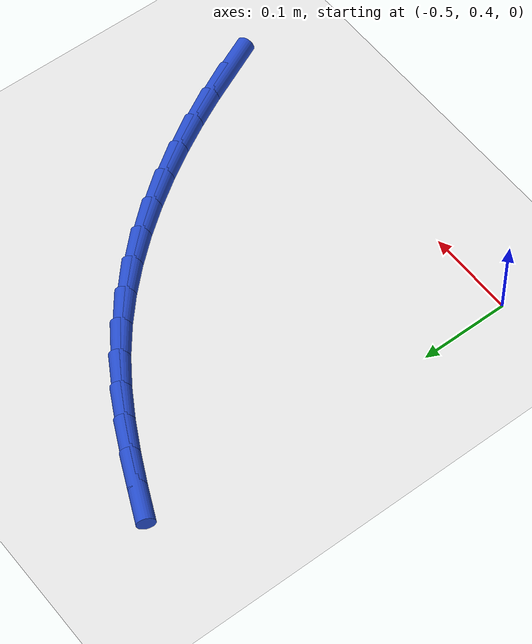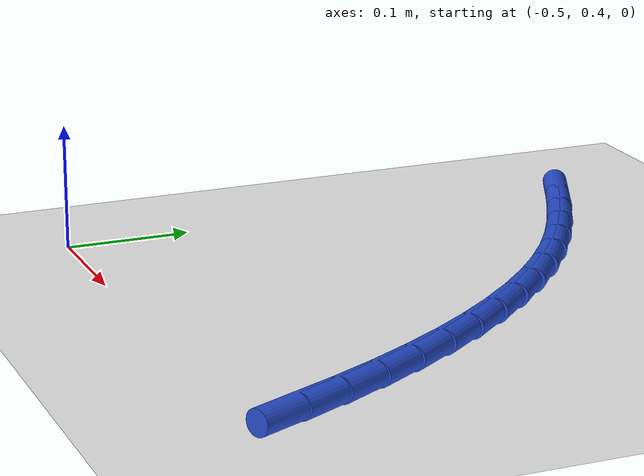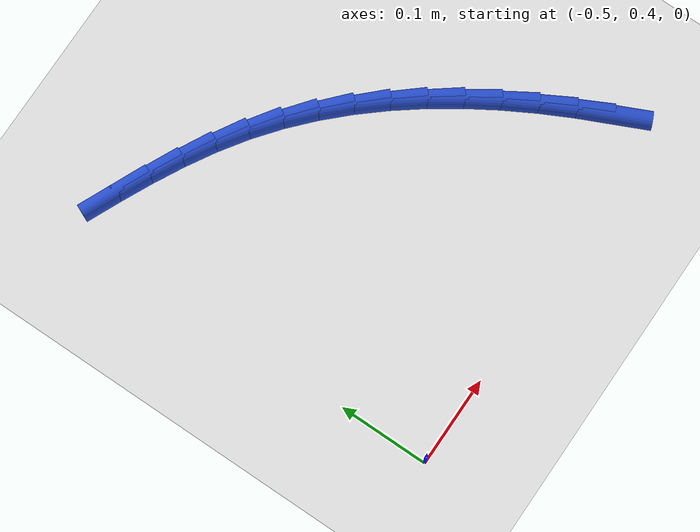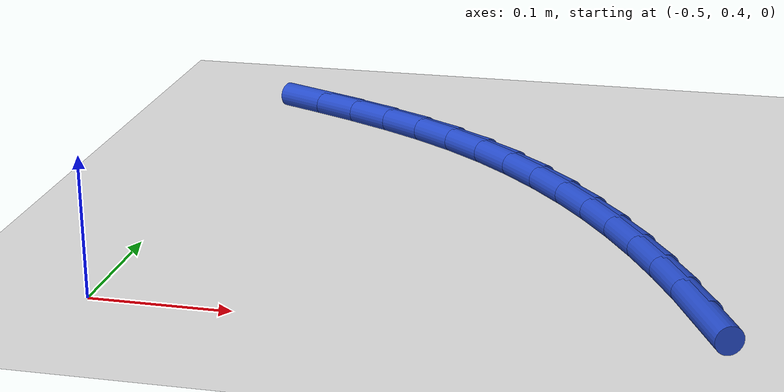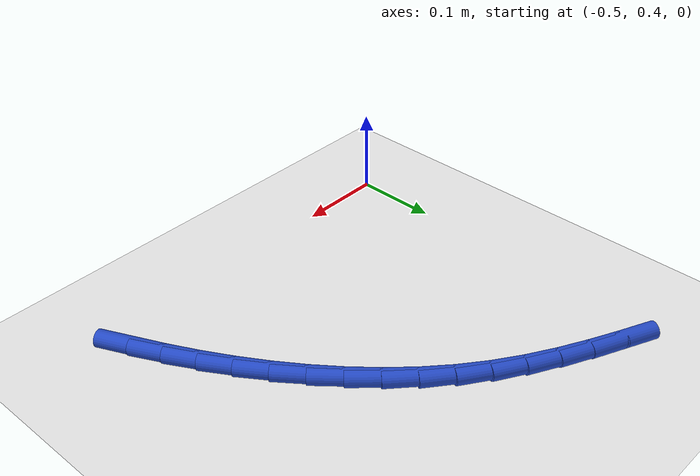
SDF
<sdf version="1.6">
 <world name="default">
  <model name="ground_plane">
   <static>1</static>
   <link name="link">
    <collision name="collision">
     <geometry><plane><normal>0 0 1</normal><size>100 100</size></plane></geometry>
     <surface><friction><ode><mu>100</mu><mu2>50</mu2></ode></friction></surface>
    </collision>
    <visual name="visual">
     <cast_shadows>0</cast_shadows>
     <geometry><plane><normal>0 0 1</normal><size>100 100</size></plane></geometry>
     <material>
      <script><uri>file://media/materials/scripts/gazebo.material</uri><name>Gazebo/WhiteGlow</name></script>
     </material>
    </visual>
   </link>
  </model>
  <model name="line">
   <link name="link_12">
    <pose>-0.09762716086988868 0.4391543428829899 0.01 0 1.57 -1.1418173892544796</pose>
    <collision name="collision">
     <geometry><cylinder><radius>0.01</radius><length>0.08</length></cylinder></geometry>
    </collision>
    <visual name="visual">
     <material>
      <script><name>Gazebo/Blue</name><uri>file://media/materials/scripts/gazebo.material</uri></script>
     </material>
     <geometry><cylinder><radius>0.01</radius><length>0.08</length></cylinder></geometry>
    </visual>
   </link>
   <link name="link_13">
    <pose>-0.1137057594886341 0.47430759747538703 0.01 0 1.57 -1.1041287998142197</pose>
    <collision name="collision">
     <geometry><cylinder><radius>0.01</radius><length>0.08</length></cylinder></geometry>
    </collision>
    <visual name="visual">
     <material>
      <script><name>Gazebo/Blue</name><uri>file://media/materials/scripts/gazebo.material</uri></script>
     </material>
     <geometry><cylinder><radius>0.01</radius><length>0.08</length></cylinder></geometry>
    </visual>
   </link>
   <link name="link_14">
    <pose>-0.13106562834652669 0.5087667812019885 0.01 0 1.57 -1.0634009452656619</pose>
    <collision name="collision">
     <geometry><cylinder><radius>0.01</radius><length>0.08</length></cylinder></geometry>
    </collision>
    <visual name="visual">
     <material>
      <script><name>Gazebo/Blue</name><uri>file://media/materials/scripts/gazebo.material</uri></script>
     </material>
     <geometry><cylinder><radius>0.01</radius><length>0.08</length></cylinder></geometry>
    </visual>
   </link>
   <link name="link_15">
    <pose>-0.14974216920068106 0.5423610580299026 0.01 0 1.57 -1.0193063535988565</pose>
    <collision name="collision">
     <geometry><cylinder><radius>0.01</radius><length>0.08</length></cylinder></geometry>
    </collision>
    <visual name="visual">
     <material>
      <script><name>Gazebo/Blue</name><uri>file://media/materials/scripts/gazebo.material</uri></script>
     </material>
     <geometry><cylinder><radius>0.01</radius><length>0.08</length></cylinder></geometry>
    </visual>
   </link>
   <link name="link_16">
    <pose>-0.16977078380821148 0.5749195919262379 0.01 0 1.57 -0.9715122780927599</pose>
    <collision name="collision">
     <geometry><cylinder><radius>0.01</radius><length>0.08</length></cylinder></geometry>
    </collision>
    <visual name="visual">
     <material>
      <script><name>Gazebo/Blue</name><uri>file://media/materials/scripts/gazebo.material</uri></script>
     </material>
     <geometry><cylinder><radius>0.01</radius><length>0.08</length></cylinder></geometry>
    </visual>
   </link>
   <link name="link_17">
    <pose>-0.19118687392623226 0.6062715468581023 0.01 0 1.57 -0.9196937972946188</pose>
    <collision name="collision">
     <geometry><cylinder><radius>0.01</radius><length>0.08</length></cylinder></geometry>
    </collision>
    <visual name="visual">
     <material>
      <script><name>Gazebo/Blue</name><uri>file://media/materials/scripts/gazebo.material</uri></script>
     </material>
     <geometry><cylinder><radius>0.01</radius><length>0.08</length></cylinder></geometry>
    </visual>
   </link>
   <link name="link_18">
    <pose>-0.2140258413118581 0.6362460867926047 0.01 0 1.57 -0.8635536196714912</pose>
    <collision name="collision">
     <geometry><cylinder><radius>0.01</radius><length>0.08</length></cylinder></geometry>
    </collision>
    <visual name="visual">
     <material>
      <script><name>Gazebo/Blue</name><uri>file://media/materials/scripts/gazebo.material</uri></script>
     </material>
     <geometry><cylinder><radius>0.01</radius><length>0.08</length></cylinder></geometry>
    </visual>
   </link>
   <link name="link_19">
    <pose>-0.23832308772220312 0.6646723756968531 0.01 0 1.57 -0.8028498639273242</pose>
    <collision name="collision">
     <geometry><cylinder><radius>0.01</radius><length>0.08</length></cylinder></geometry>
    </collision>
    <visual name="visual">
     <material>
      <script><name>Gazebo/Blue</name><uri>file://media/materials/scripts/gazebo.material</uri></script>
     </material>
     <geometry><cylinder><radius>0.01</radius><length>0.08</length></cylinder></geometry>
    </visual>
   </link>
   <link name="link_20">
    <pose>-0.2641140149143818 0.691379577537956 0.01 0 1.57 -0.7374322756751124</pose>
    <collision name="collision">
     <geometry><cylinder><radius>0.01</radius><length>0.08</length></cylinder></geometry>
    </collision>
    <visual name="visual">
     <material>
      <script><name>Gazebo/Blue</name><uri>file://media/materials/scripts/gazebo.material</uri></script>
     </material>
     <geometry><cylinder><radius>0.01</radius><length>0.08</length></cylinder></geometry>
    </visual>
   </link>
   <link name="link_21">
    <pose>-0.2914340246455086 0.7161968562830217 0.01 0 1.57 -0.6672856169901368</pose>
    <collision name="collision">
     <geometry><cylinder><radius>0.01</radius><length>0.08</length></cylinder></geometry>
    </collision>
    <visual name="visual">
     <material>
      <script><name>Gazebo/Blue</name><uri>file://media/materials/scripts/gazebo.material</uri></script>
     </material>
     <geometry><cylinder><radius>0.01</radius><length>0.08</length></cylinder></geometry>
    </visual>
   </link>
   <link name="link_22">
    <pose>-0.3203185186726979 0.7389533758991584 0.01 0 1.57 -0.5953099155661662</pose>
    <collision name="collision">
     <geometry><cylinder><radius>0.01</radius><length>0.08</length></cylinder></geometry>
    </collision>
    <visual name="visual">
     <material>
      <script><name>Gazebo/Blue</name><uri>file://media/materials/scripts/gazebo.material</uri></script>
     </material>
     <geometry><cylinder><radius>0.01</radius><length>0.08</length></cylinder></geometry>
    </visual>
   </link>
   <link name="link_23">
    <pose>-0.35075547728189393 0.7595675224053315 0.01 0 1.57 -0.5331543355695357</pose>
    <collision name="collision">
     <geometry><cylinder><radius>0.01</radius><length>0.08</length></cylinder></geometry>
    </collision>
    <visual name="visual">
     <material>
      <script><name>Gazebo/Blue</name><uri>file://media/materials/scripts/gazebo.material</uri></script>
     </material>
     <geometry><cylinder><radius>0.01</radius><length>0.08</length></cylinder></geometry>
    </visual>
   </link>
   <link name="link_24">
    <pose>-0.3825379925845536 0.7783243579775551 0.01 0 1.57 -0.4839581522486987</pose>
    <collision name="collision">
     <geometry><cylinder><radius>0.01</radius><length>0.08</length></cylinder></geometry>
    </collision>
    <visual name="visual">
     <material>
      <script><name>Gazebo/Blue</name><uri>file://media/materials/scripts/gazebo.material</uri></script>
     </material>
     <geometry><cylinder><radius>0.01</radius><length>0.08</length></cylinder></geometry>
    </visual>
   </link>
   <link name="link_25">
    <pose>-0.41540909860459974 0.7956031275569844 0.01 0 1.57 -0.4475835850824544</pose>
    <collision name="collision">
     <geometry><cylinder><radius>0.01</radius><length>0.08</length></cylinder></geometry>
    </collision>
    <visual name="visual">
     <material>
      <script><name>Gazebo/Blue</name><uri>file://media/materials/scripts/gazebo.material</uri></script>
     </material>
     <geometry><cylinder><radius>0.01</radius><length>0.08</length></cylinder></geometry>
    </visual>
   </link>
   <link name="link_26">
    <pose>-0.4491118293302137 0.8117830761520202 0.01 0 1.57 -0.4237160033328828</pose>
    <collision name="collision">
     <geometry><cylinder><radius>0.01</radius><length>0.08</length></cylinder></geometry>
    </collision>
    <visual name="visual">
     <material>
      <script><name>Gazebo/Blue</name><uri>file://media/materials/scripts/gazebo.material</uri></script>
     </material>
     <geometry><cylinder><radius>0.01</radius><length>0.08</length></cylinder></geometry>
    </visual>
   </link>
  </model>
 </world>
</sdf>
